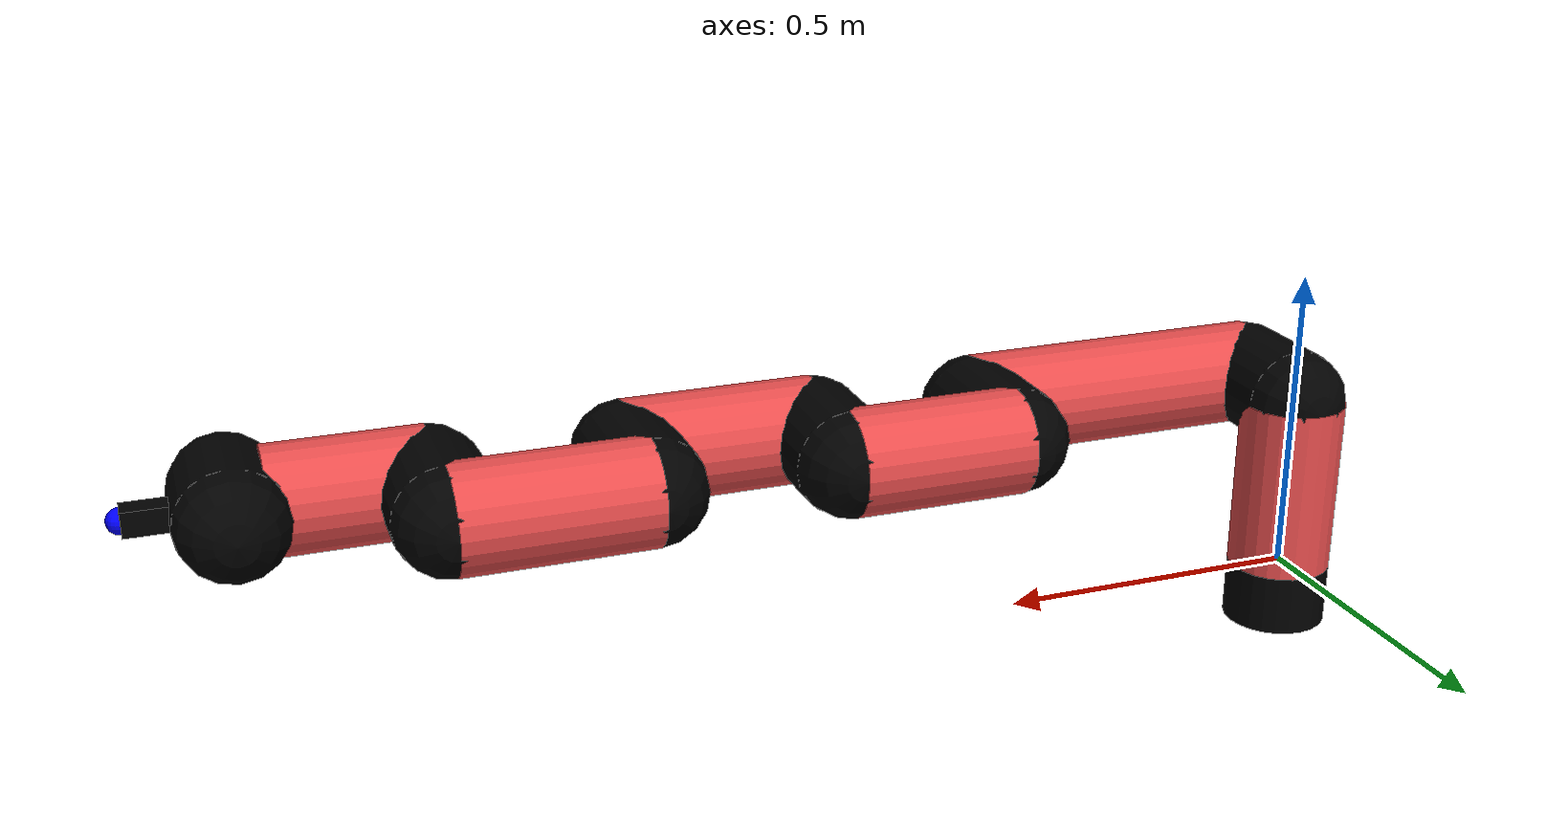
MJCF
<mujoco model="manipulator">
		<compiler angle="degree" coordinate="local" inertiafromgeom="auto" meshdir="meshes/"/>
		<option gravity="0 0 0" integrator="RK4" iterations="30" timestep="0.01"/>

		<default>
		<joint armature="1" limited="true" stiffness="10" damping="15" frictionloss="5.0"/>
		<geom conaffinity="1" condim="3" contype="1" friction=".5 .1 .1" margin="0.002"/>
		<motor ctrllimited="true"/>
		<position ctrllimited="true"/>
		</default>

		<asset>
		<texture builtin="gradient" height="100" rgb1="1.0 1.0 1.0" rgb2="1.0 1.0 1.0" type="skybox" width="100"/>
		<texture builtin="flat" height="32" name="arm_tex" rgb1="0.9 0.3 0.3" type="2d" width="32"/>
		<texture builtin="flat" height="32" name="gripper_tex" rgb1="0.0 0.0 0.0" type="cube" width="32"/>

		<material name="arm_mat" shininess="0.1" specular="0.1" texture="arm_tex"/>
		<material name="gripper_mat" shininess="1" specular="1" texture="gripper_tex"/>
		</asset>

		<worldbody>
		<light cutoff="45" diffuse=".8 .8 .8" dir="0 0.16 -1" directional="false" name="light" pos="0 -2.0 8.0" specular="0.3 0.3 0.3"/>

		<body name="base_link" pos="0 0 -0.1">
		<geom fromto="0 0 0 0 0 0.1" material="arm_mat" name="base_link" rgba="0.0 0.0 0.0 1" size="0.085" type="cylinder"/>
		</body>

		<body name="l1" pos="0 0 0">
<geom fromto="0 0 0 0 0 0.29" material="arm_mat" name="l1" rgba="0.9 0.3 0.3 1" size="0.085" type="cylinder"/>
<geom fromto="0 0 0.29 0 -0.16 0.29" material="arm_mat" name="l1_ex" rgba="0.0 0.0 0.0 1" size="0.085" type="capsule"/>
<joint axis="0 0 1" name="j1" pos="0 0 0" range="-90 90" damping="23.44" frictionloss="11.12"/>

<body name="l2" pos="0 -0.16 0.29">
<geom fromto="0 0 0 0.51 0 0" material="arm_mat" name="l2" rgba="0.9 0.3 0.3 1" size="0.085" type="cylinder"/>
<geom fromto="0.51 0 0 0.51 0.16 0" material="arm_mat" name="l2_ex" rgba="0.0 0.0 0.0 1" size="0.085" type="capsule"/>
<joint axis="0.0 1.0 0.0" name="j2" pos="0 0 0" range="-90 60" damping="25.28" frictionloss="11.03"/>

<body name="l3" pos="0.51 0.16 0">
<geom fromto="0 0 0 0.28 0 0" material="arm_mat" name="l3" rgba="0.9 0.3 0.3 1" size="0.085" type="cylinder"/>
<geom fromto="0.28 0 0 0.28 -0.16 0" material="arm_mat" name="l3_ex" rgba="0.0 0.0 0.0 1" size="0.085" type="capsule"/>
<joint axis="0.0 1.0 0.0" name="j3" pos="0 0 0" range="-30 60" damping="26.08" frictionloss="10.13"/>

<body name="l4" pos="0.28 -0.16 0">
<geom fromto="0 0 0 0.31 0 0" material="arm_mat" name="l4" rgba="0.9 0.3 0.3 1" size="0.085" type="cylinder"/>
<geom fromto="0.31 0 0 0.31 0.16 0" material="arm_mat" name="l4_ex" rgba="0.0 0.0 0.0 1" size="0.085" type="capsule"/>
<joint axis="0.0 1.0 0.0" name="j4" pos="0 0 0" range="-30 60" damping="24.98" frictionloss="8.67"/>

<body name="l5" pos="0.31 0.16 0">
<geom fromto="0 0 0 0.3 0 0" material="arm_mat" name="l5" rgba="0.9 0.3 0.3 1" size="0.085" type="cylinder"/>
<geom fromto="0.3 0 0 0.3 -0.16 0" material="arm_mat" name="l5_ex" rgba="0.0 0.0 0.0 1" size="0.085" type="capsule"/>
<joint axis="0.0 1.0 0.0" name="j5" pos="0 0 0" range="-30 60" damping="36.96" frictionloss="10.78"/>

<body name="l6" pos="0.3 -0.16 0">
<geom fromto="0 0 0 0.24 0 0" material="arm_mat" name="l6" rgba="0.9 0.3 0.3 1" size="0.085" type="cylinder"/>
<joint axis="0.0 1.0 0.0" name="j6" pos="0 0 0" range="-30 60" damping="22.87" frictionloss="10.22"/>

<body name="gripper" pos="0.24 0 0">
<geom fromto="0.05 -0.07 0 0.05 0.07 0" material="gripper_mat" name="gripper" rgba="0.0 0.0 0.0 1" size="0.085" type="capsule"/><joint axis="1 0 0" name="j7" pos="0 0 0" range="-90 90" damping="15" frictionloss="5.0"/><body name="finger" pos="0.1 0 0">
<geom fromto="0 0.0 0 0.1 0.0 0" material="gripper_mat" name="finger" rgba="0.0 0.0 0.0 1" size="0.020 0.06 0.06" type="box"/>
</body>
<site name="current" pos="0.2 0. 0.0" rgba="0. 0. 1.0 1" size="0.02" type="sphere"/>
</body>
</body>
</body>
</body>
</body>
</body>
</body>
</worldbody>
<actuator>
<motor ctrllimited="true" ctrlrange="-1.0 1.0" joint="j1" gear="93.88"/>
<motor ctrllimited="true" ctrlrange="-1.0 1.0" joint="j2" gear="67.58"/>
<motor ctrllimited="true" ctrlrange="-1.0 1.0" joint="j3" gear="85.99"/>
<motor ctrllimited="true" ctrlrange="-1.0 1.0" joint="j4" gear="68.79"/>
<motor ctrllimited="true" ctrlrange="-1.0 1.0" joint="j5" gear="94.38"/>
<motor ctrllimited="true" ctrlrange="-1.0 1.0" joint="j6" gear="69.18"/>
<motor ctrllimited="true" ctrlrange="-1.0 1.0" joint="j7" gear="80"/>
</actuator>
</mujoco>
